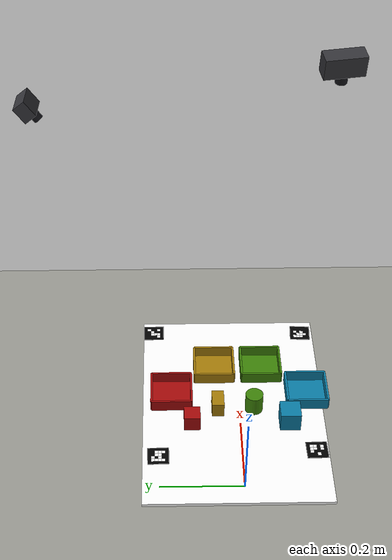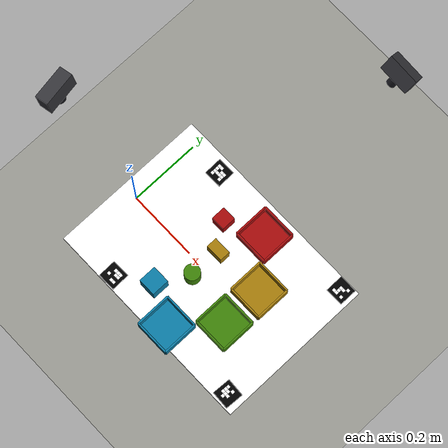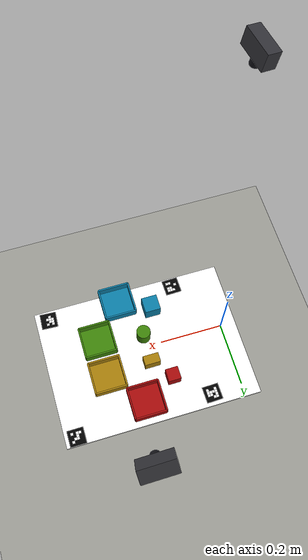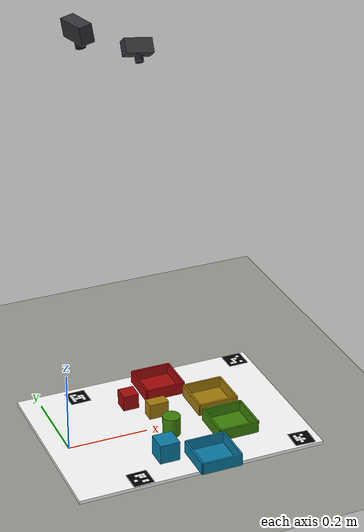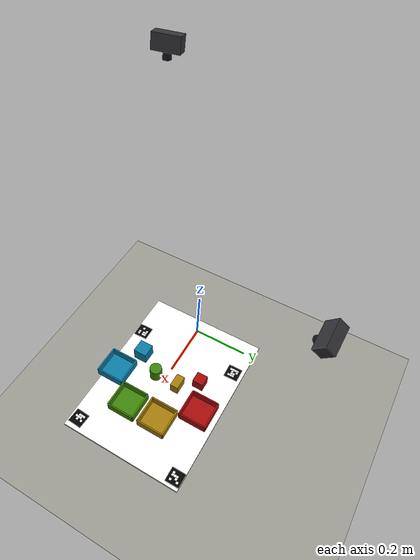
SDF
<?xml version='1.0' encoding='utf-8'?>
<sdf version="1.9">
  <world name="banc_realiste_yolo26">
    <plugin filename="gz-sim-physics-system" name="gz::sim::systems::Physics" />
    <plugin filename="gz-sim-user-commands-system" name="gz::sim::systems::UserCommands" />
    <plugin filename="gz-sim-scene-broadcaster-system" name="gz::sim::systems::SceneBroadcaster" />
    <plugin filename="gz-sim-sensors-system" name="gz::sim::systems::Sensors">
      <render_engine>ogre</render_engine>
    </plugin>
    <physics name="default_physics" type="ode">
      <max_step_size>0.001</max_step_size>
      <real_time_factor>1.0</real_time_factor>
    </physics>
    <scene>
      <ambient>0.5000 0.5000 0.5000 1.0000</ambient>
      <background>0.8 0.82 0.85 1</background>
    </scene>
    <light type="directional" name="sun">
      <cast_shadows>true</cast_shadows>
      <pose>0 0 10 0 0 0</pose>
      <diffuse>0.9000 0.9000 0.8500 1.0000</diffuse>
      <specular>0.3000 0.3000 0.3000 1.0000</specular>
      <attenuation>
        <range>1000</range>
        <constant>0.9</constant>
        <linear>0.01</linear>
        <quadratic>0.001</quadratic>
      </attenuation>
      <direction>-0.5 0.3 -0.9</direction>
    </light>
    <light type="directional" name="fill_light">
      <cast_shadows>false</cast_shadows>
      <pose>0 0 8 0 0 0</pose>
      <diffuse>0.4000 0.4000 0.5000 1.0000</diffuse>
      <specular>0.1000 0.1000 0.1000 1.0000</specular>
      <direction>0.5 -0.3 -0.7</direction>
    </light>
    <model name="ground_plane">
      <static>true</static>
      <link name="link">
        <collision name="collision">
          <geometry>
            <plane>
              <normal>0 0 1</normal>
              <size>20 20</size>
            </plane>
          </geometry>
        </collision>
        <visual name="visual">
          <geometry>
            <plane>
              <normal>0 0 1</normal>
              <size>20 20</size>
            </plane>
          </geometry>
          <material>
            <ambient>0.55 0.55 0.52 1</ambient>
            <diffuse>0.6 0.6 0.57 1</diffuse>
          </material>
        </visual>
      </link>
      <pose>0 0 -0.0085 0 0 0</pose>
    </model>
    <model name="table">
      <static>true</static>
      <pose>0.261 0.017 -0.00425 0 0 0</pose>
      <link name="link">
        <visual name="visual">
          <geometry>
            <mesh>
              <uri>package://mycobot_description/models/wood_table/meshes/tabletop.dae</uri>
            </mesh>
          </geometry>
          <material>
            <ambient>1 1 1 1</ambient>
            <diffuse>1 1 1 1</diffuse>
            <specular>0.08 0.08 0.08 1</specular>
            <pbr>
              <metal>
                <albedo_map>package://mycobot_description/models/wood_table/materials/textures/wood_albedo.png</albedo_map>
                <metalness>0.0</metalness>
                <roughness>0.65</roughness>
              </metal>
            </pbr>
          </material>
        </visual>
        <collision name="collision">
          <geometry>
            <box>
              <size>0.622 0.449 0.0085</size>
            </box>
          </geometry>
          <surface>
            <friction>
              <ode>
                <mu>0.9</mu>
                <mu2>0.9</mu2>
              </ode>
            </friction>
          </surface>
        </collision>
      </link>
    </model>
    <include>
      <uri>package://mycobot_description/models/aruco_19</uri>
      <name>aruco_19</name>
      <pose>0.0968 0.2034 0 0 0 -1.549547177458</pose>
    </include>
    <include>
      <uri>package://mycobot_description/models/aruco_23</uri>
      <name>aruco_23</name>
      <pose>0.11 -0.179 0 0 0 -1.550472159638</pose>
    </include>
    <include>
      <uri>package://mycobot_description/models/aruco_25</uri>
      <name>aruco_25</name>
      <pose>0.535 0.215 0 0 0 -1.567821028086</pose>
    </include>
    <include>
      <uri>package://mycobot_description/models/aruco_26</uri>
      <name>aruco_26</name>
      <pose>0.53 -0.176 0 0 0 -0.053626108386</pose>
    </include>
    <include>
      <uri>package://mycobot_description/models/bac_rouge</uri>
      <name>bac_rouge</name>
      <pose>0.300000 0.170000 0 0 0 0</pose>
    </include>
    <include>
      <uri>package://mycobot_description/models/cube_rouge</uri>
      <name>cube_rouge</name>
      <pose>0.200000 0.120000 0 0 0 0</pose>
    </include>
    <include>
      <uri>package://mycobot_description/models/bac_jaune</uri>
      <name>bac_jaune</name>
      <pose>0.395000 0.060000 0 0 0 0</pose>
    </include>
    <include>
      <uri>package://mycobot_description/models/pave_jaune</uri>
      <name>pave_jaune</name>
      <pose>0.250000 0.055000 0 0 0 0</pose>
    </include>
    <include>
      <uri>package://mycobot_description/models/bac_vert</uri>
      <name>bac_vert</name>
      <pose>0.395000 -0.060000 0 0 0 0</pose>
    </include>
    <include>
      <uri>package://mycobot_description/models/cylindre_vert</uri>
      <name>cylindre_vert</name>
      <pose>0.250000 -0.035000 0 0 0 0</pose>
    </include>
    <include>
      <uri>package://mycobot_description/models/bac_bleu</uri>
      <name>bac_bleu</name>
      <pose>0.300000 -0.170000 0 0 0 0</pose>
    </include>
    <include>
      <uri>package://mycobot_description/models/cube_bleu</uri>
      <name>cube_bleu</name>
      <pose>0.200000 -0.120000 0 0 0 0</pose>
    </include>
    <model name="arducam">
      <static>true</static>
      <pose>0.007071 -0.128254 1.069888 -0.046957 1.405347 0.119569</pose>
      <link name="camera_link">
        <visual name="boitier">
          <pose>-0.02 0 0 0 0 0</pose>
          <geometry>
            <box>
              <size>0.04 0.075 0.03</size>
            </box>
          </geometry>
          <material>
            <ambient>0.15 0.15 0.17 1</ambient>
            <diffuse>0.2 0.2 0.22 1</diffuse>
          </material>
        </visual>
        <visual name="objectif">
          <pose>0.008 0 0 0 1.5707963 0</pose>
          <geometry>
            <cylinder>
              <radius>0.011</radius>
              <length>0.022</length>
            </cylinder>
          </geometry>
          <material>
            <ambient>0.05 0.05 0.06 1</ambient>
            <diffuse>0.08 0.08 0.1 1</diffuse>
            <specular>0.6 0.6 0.6 1</specular>
          </material>
        </visual>
        <sensor name="arducam" type="camera">
          <always_on>true</always_on>
          <update_rate>10</update_rate>
          <topic>/arducam/image_raw</topic>
          <camera>
            <camera_info_topic>/arducam/camera_info</camera_info_topic>
            <horizontal_fov>1.145367686</horizontal_fov>
            <image>
              <width>640</width>
              <height>480</height>
              <format>R8G8B8</format>
            </image>
            <lens>
              <intrinsics>
                <fx>496.307503</fx>
                <fy>494.142967</fy>
                <cx>313.373811</cx>
                <cy>248.005662</cy>
                <s>0</s>
              </intrinsics>
            </lens>
            <clip>
              <near>0.02</near>
              <far>4.0</far>
            </clip>
          </camera>
        </sensor>
      </link>
    </model>
    <model name="svpro">
      <static>true</static>
      <pose>0.370684 0.457849 0.781242 -0.181539 0.898533 -1.722805</pose>
      <link name="camera_link">
        <visual name="boitier">
          <pose>-0.02 0 0 0 0 0</pose>
          <geometry>
            <box>
              <size>0.04 0.075 0.03</size>
            </box>
          </geometry>
          <material>
            <ambient>0.15 0.15 0.17 1</ambient>
            <diffuse>0.2 0.2 0.22 1</diffuse>
          </material>
        </visual>
        <visual name="objectif">
          <pose>0.008 0 0 0 1.5707963 0</pose>
          <geometry>
            <cylinder>
              <radius>0.011</radius>
              <length>0.022</length>
            </cylinder>
          </geometry>
          <material>
            <ambient>0.05 0.05 0.06 1</ambient>
            <diffuse>0.08 0.08 0.1 1</diffuse>
            <specular>0.6 0.6 0.6 1</specular>
          </material>
        </visual>
        <sensor name="svpro" type="camera">
          <always_on>true</always_on>
          <update_rate>10</update_rate>
          <topic>/svpro/image_raw</topic>
          <camera>
            <camera_info_topic>/svpro/camera_info</camera_info_topic>
            <horizontal_fov>1.241009780</horizontal_fov>
            <image>
              <width>640</width>
              <height>480</height>
              <format>R8G8B8</format>
            </image>
            <lens>
              <intrinsics>
                <fx>447.758168</fx>
                <fy>446.544127</fy>
                <cx>333.179135</cx>
                <cy>267.295929</cy>
                <s>0</s>
              </intrinsics>
            </lens>
            <clip>
              <near>0.02</near>
              <far>4.0</far>
            </clip>
          </camera>
        </sensor>
      </link>
    </model>
  </world>
</sdf>

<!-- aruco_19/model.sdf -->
<sdf version="1.9">
  <model name="aruco_19">
    <static>true</static>
    <link name="marker">
      <visual name="white_backing">
        <pose>0.000000000000 0.000000000000 0.000050000000 0 0 0</pose>
        <cast_shadows>false</cast_shadows>
        <geometry>
          <box><size>0.052000000000 0.052000000000 0.000100000000</size></box>
        </geometry>
        <material>
          <ambient>1 1 1 1</ambient>
          <diffuse>1 1 1 1</diffuse>
          <specular>0 0 0 1</specular>
        </material>
      </visual>
      <visual name="black_square">
        <pose>0.000000000000 0.000000000000 0.000110000000 0 0 0</pose>
        <cast_shadows>false</cast_shadows>
        <geometry>
          <box><size>0.050000000000 0.050000000000 0.000020000000</size></box>
        </geometry>
        <material>
          <ambient>0 0 0 1</ambient>
          <diffuse>0 0 0 1</diffuse>
          <specular>0 0 0 1</specular>
        </material>
      </visual>
      <visual name="white_cell_1_2">
        <pose>-0.004166666667 0.012500000000 0.000125000000 0 0 0</pose>
        <cast_shadows>false</cast_shadows>
        <geometry>
          <box><size>0.008333333333 0.008333333333 0.000010000000</size></box>
        </geometry>
        <material>
          <ambient>1 1 1 1</ambient>
          <diffuse>1 1 1 1</diffuse>
          <specular>0 0 0 1</specular>
        </material>
      </visual>
      <visual name="white_cell_1_3">
        <pose>0.004166666667 0.012500000000 0.000125000000 0 0 0</pose>
        <cast_shadows>false</cast_shadows>
        <geometry>
          <box><size>0.008333333333 0.008333333333 0.000010000000</size></box>
        </geometry>
        <material>
          <ambient>1 1 1 1</ambient>
          <diffuse>1 1 1 1</diffuse>
          <specular>0 0 0 1</specular>
        </material>
      </visual>
      <visual name="white_cell_1_4">
        <pose>0.012500000000 0.012500000000 0.000125000000 0 0 0</pose>
        <cast_shadows>false</cast_shadows>
        <geometry>
          <box><size>0.008333333333 0.008333333333 0.000010000000</size></box>
        </geometry>
        <material>
          <ambient>1 1 1 1</ambient>
          <diffuse>1 1 1 1</diffuse>
          <specular>0 0 0 1</specular>
        </material>
      </visual>
      <visual name="white_cell_2_2">
        <pose>-0.004166666667 0.004166666667 0.000125000000 0 0 0</pose>
        <cast_shadows>false</cast_shadows>
        <geometry>
          <box><size>0.008333333333 0.008333333333 0.000010000000</size></box>
        </geometry>
        <material>
          <ambient>1 1 1 1</ambient>
          <diffuse>1 1 1 1</diffuse>
          <specular>0 0 0 1</specular>
        </material>
      </visual>
      <visual name="white_cell_2_3">
        <pose>0.004166666667 0.004166666667 0.000125000000 0 0 0</pose>
        <cast_shadows>false</cast_shadows>
        <geometry>
          <box><size>0.008333333333 0.008333333333 0.000010000000</size></box>
        </geometry>
        <material>
          <ambient>1 1 1 1</ambient>
          <diffuse>1 1 1 1</diffuse>
          <specular>0 0 0 1</specular>
        </material>
      </visual>
      <visual name="white_cell_3_1">
        <pose>-0.012500000000 -0.004166666667 0.000125000000 0 0 0</pose>
        <cast_shadows>false</cast_shadows>
        <geometry>
          <box><size>0.008333333333 0.008333333333 0.000010000000</size></box>
        </geometry>
        <material>
          <ambient>1 1 1 1</ambient>
          <diffuse>1 1 1 1</diffuse>
          <specular>0 0 0 1</specular>
        </material>
      </visual>
      <visual name="white_cell_3_3">
        <pose>0.004166666667 -0.004166666667 0.000125000000 0 0 0</pose>
        <cast_shadows>false</cast_shadows>
        <geometry>
          <box><size>0.008333333333 0.008333333333 0.000010000000</size></box>
        </geometry>
        <material>
          <ambient>1 1 1 1</ambient>
          <diffuse>1 1 1 1</diffuse>
          <specular>0 0 0 1</specular>
        </material>
      </visual>
      <visual name="white_cell_4_1">
        <pose>-0.012500000000 -0.012500000000 0.000125000000 0 0 0</pose>
        <cast_shadows>false</cast_shadows>
        <geometry>
          <box><size>0.008333333333 0.008333333333 0.000010000000</size></box>
        </geometry>
        <material>
          <ambient>1 1 1 1</ambient>
          <diffuse>1 1 1 1</diffuse>
          <specular>0 0 0 1</specular>
        </material>
      </visual>
      <visual name="white_cell_4_2">
        <pose>-0.004166666667 -0.012500000000 0.000125000000 0 0 0</pose>
        <cast_shadows>false</cast_shadows>
        <geometry>
          <box><size>0.008333333333 0.008333333333 0.000010000000</size></box>
        </geometry>
        <material>
          <ambient>1 1 1 1</ambient>
          <diffuse>1 1 1 1</diffuse>
          <specular>0 0 0 1</specular>
        </material>
      </visual>
      <visual name="white_cell_4_3">
        <pose>0.004166666667 -0.012500000000 0.000125000000 0 0 0</pose>
        <cast_shadows>false</cast_shadows>
        <geometry>
          <box><size>0.008333333333 0.008333333333 0.000010000000</size></box>
        </geometry>
        <material>
          <ambient>1 1 1 1</ambient>
          <diffuse>1 1 1 1</diffuse>
          <specular>0 0 0 1</specular>
        </material>
      </visual>
      <visual name="white_cell_4_4">
        <pose>0.012500000000 -0.012500000000 0.000125000000 0 0 0</pose>
        <cast_shadows>false</cast_shadows>
        <geometry>
          <box><size>0.008333333333 0.008333333333 0.000010000000</size></box>
        </geometry>
        <material>
          <ambient>1 1 1 1</ambient>
          <diffuse>1 1 1 1</diffuse>
          <specular>0 0 0 1</specular>
        </material>
      </visual>
    </link>
  </model>
</sdf>

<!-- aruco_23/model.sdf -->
<sdf version="1.9">
  <model name="aruco_23">
    <static>true</static>
    <link name="marker">
      <visual name="white_backing">
        <pose>0.000000000000 0.000000000000 0.000050000000 0 0 0</pose>
        <cast_shadows>false</cast_shadows>
        <geometry>
          <box><size>0.052000000000 0.052000000000 0.000100000000</size></box>
        </geometry>
        <material>
          <ambient>1 1 1 1</ambient>
          <diffuse>1 1 1 1</diffuse>
          <specular>0 0 0 1</specular>
        </material>
      </visual>
      <visual name="black_square">
        <pose>0.000000000000 0.000000000000 0.000110000000 0 0 0</pose>
        <cast_shadows>false</cast_shadows>
        <geometry>
          <box><size>0.050000000000 0.050000000000 0.000020000000</size></box>
        </geometry>
        <material>
          <ambient>0 0 0 1</ambient>
          <diffuse>0 0 0 1</diffuse>
          <specular>0 0 0 1</specular>
        </material>
      </visual>
      <visual name="white_cell_1_1">
        <pose>-0.012500000000 0.012500000000 0.000125000000 0 0 0</pose>
        <cast_shadows>false</cast_shadows>
        <geometry>
          <box><size>0.008333333333 0.008333333333 0.000010000000</size></box>
        </geometry>
        <material>
          <ambient>1 1 1 1</ambient>
          <diffuse>1 1 1 1</diffuse>
          <specular>0 0 0 1</specular>
        </material>
      </visual>
      <visual name="white_cell_1_2">
        <pose>-0.004166666667 0.012500000000 0.000125000000 0 0 0</pose>
        <cast_shadows>false</cast_shadows>
        <geometry>
          <box><size>0.008333333333 0.008333333333 0.000010000000</size></box>
        </geometry>
        <material>
          <ambient>1 1 1 1</ambient>
          <diffuse>1 1 1 1</diffuse>
          <specular>0 0 0 1</specular>
        </material>
      </visual>
      <visual name="white_cell_1_4">
        <pose>0.012500000000 0.012500000000 0.000125000000 0 0 0</pose>
        <cast_shadows>false</cast_shadows>
        <geometry>
          <box><size>0.008333333333 0.008333333333 0.000010000000</size></box>
        </geometry>
        <material>
          <ambient>1 1 1 1</ambient>
          <diffuse>1 1 1 1</diffuse>
          <specular>0 0 0 1</specular>
        </material>
      </visual>
      <visual name="white_cell_2_1">
        <pose>-0.012500000000 0.004166666667 0.000125000000 0 0 0</pose>
        <cast_shadows>false</cast_shadows>
        <geometry>
          <box><size>0.008333333333 0.008333333333 0.000010000000</size></box>
        </geometry>
        <material>
          <ambient>1 1 1 1</ambient>
          <diffuse>1 1 1 1</diffuse>
          <specular>0 0 0 1</specular>
        </material>
      </visual>
      <visual name="white_cell_2_2">
        <pose>-0.004166666667 0.004166666667 0.000125000000 0 0 0</pose>
        <cast_shadows>false</cast_shadows>
        <geometry>
          <box><size>0.008333333333 0.008333333333 0.000010000000</size></box>
        </geometry>
        <material>
          <ambient>1 1 1 1</ambient>
          <diffuse>1 1 1 1</diffuse>
          <specular>0 0 0 1</specular>
        </material>
      </visual>
      <visual name="white_cell_2_4">
        <pose>0.012500000000 0.004166666667 0.000125000000 0 0 0</pose>
        <cast_shadows>false</cast_shadows>
        <geometry>
          <box><size>0.008333333333 0.008333333333 0.000010000000</size></box>
        </geometry>
        <material>
          <ambient>1 1 1 1</ambient>
          <diffuse>1 1 1 1</diffuse>
          <specular>0 0 0 1</specular>
        </material>
      </visual>
      <visual name="white_cell_3_1">
        <pose>-0.012500000000 -0.004166666667 0.000125000000 0 0 0</pose>
        <cast_shadows>false</cast_shadows>
        <geometry>
          <box><size>0.008333333333 0.008333333333 0.000010000000</size></box>
        </geometry>
        <material>
          <ambient>1 1 1 1</ambient>
          <diffuse>1 1 1 1</diffuse>
          <specular>0 0 0 1</specular>
        </material>
      </visual>
      <visual name="white_cell_4_3">
        <pose>0.004166666667 -0.012500000000 0.000125000000 0 0 0</pose>
        <cast_shadows>false</cast_shadows>
        <geometry>
          <box><size>0.008333333333 0.008333333333 0.000010000000</size></box>
        </geometry>
        <material>
          <ambient>1 1 1 1</ambient>
          <diffuse>1 1 1 1</diffuse>
          <specular>0 0 0 1</specular>
        </material>
      </visual>
    </link>
  </model>
</sdf>

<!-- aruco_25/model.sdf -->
<sdf version="1.9">
  <model name="aruco_25">
    <static>true</static>
    <link name="marker">
      <visual name="white_backing">
        <pose>0.000000000000 0.000000000000 0.000050000000 0 0 0</pose>
        <cast_shadows>false</cast_shadows>
        <geometry>
          <box><size>0.052000000000 0.052000000000 0.000100000000</size></box>
        </geometry>
        <material>
          <ambient>1 1 1 1</ambient>
          <diffuse>1 1 1 1</diffuse>
          <specular>0 0 0 1</specular>
        </material>
      </visual>
      <visual name="black_square">
        <pose>0.000000000000 0.000000000000 0.000110000000 0 0 0</pose>
        <cast_shadows>false</cast_shadows>
        <geometry>
          <box><size>0.050000000000 0.050000000000 0.000020000000</size></box>
        </geometry>
        <material>
          <ambient>0 0 0 1</ambient>
          <diffuse>0 0 0 1</diffuse>
          <specular>0 0 0 1</specular>
        </material>
      </visual>
      <visual name="white_cell_1_1">
        <pose>-0.012500000000 0.012500000000 0.000125000000 0 0 0</pose>
        <cast_shadows>false</cast_shadows>
        <geometry>
          <box><size>0.008333333333 0.008333333333 0.000010000000</size></box>
        </geometry>
        <material>
          <ambient>1 1 1 1</ambient>
          <diffuse>1 1 1 1</diffuse>
          <specular>0 0 0 1</specular>
        </material>
      </visual>
      <visual name="white_cell_1_4">
        <pose>0.012500000000 0.012500000000 0.000125000000 0 0 0</pose>
        <cast_shadows>false</cast_shadows>
        <geometry>
          <box><size>0.008333333333 0.008333333333 0.000010000000</size></box>
        </geometry>
        <material>
          <ambient>1 1 1 1</ambient>
          <diffuse>1 1 1 1</diffuse>
          <specular>0 0 0 1</specular>
        </material>
      </visual>
      <visual name="white_cell_2_2">
        <pose>-0.004166666667 0.004166666667 0.000125000000 0 0 0</pose>
        <cast_shadows>false</cast_shadows>
        <geometry>
          <box><size>0.008333333333 0.008333333333 0.000010000000</size></box>
        </geometry>
        <material>
          <ambient>1 1 1 1</ambient>
          <diffuse>1 1 1 1</diffuse>
          <specular>0 0 0 1</specular>
        </material>
      </visual>
      <visual name="white_cell_3_2">
        <pose>-0.004166666667 -0.004166666667 0.000125000000 0 0 0</pose>
        <cast_shadows>false</cast_shadows>
        <geometry>
          <box><size>0.008333333333 0.008333333333 0.000010000000</size></box>
        </geometry>
        <material>
          <ambient>1 1 1 1</ambient>
          <diffuse>1 1 1 1</diffuse>
          <specular>0 0 0 1</specular>
        </material>
      </visual>
      <visual name="white_cell_3_3">
        <pose>0.004166666667 -0.004166666667 0.000125000000 0 0 0</pose>
        <cast_shadows>false</cast_shadows>
        <geometry>
          <box><size>0.008333333333 0.008333333333 0.000010000000</size></box>
        </geometry>
        <material>
          <ambient>1 1 1 1</ambient>
          <diffuse>1 1 1 1</diffuse>
          <specular>0 0 0 1</specular>
        </material>
      </visual>
      <visual name="white_cell_3_4">
        <pose>0.012500000000 -0.004166666667 0.000125000000 0 0 0</pose>
        <cast_shadows>false</cast_shadows>
        <geometry>
          <box><size>0.008333333333 0.008333333333 0.000010000000</size></box>
        </geometry>
        <material>
          <ambient>1 1 1 1</ambient>
          <diffuse>1 1 1 1</diffuse>
          <specular>0 0 0 1</specular>
        </material>
      </visual>
      <visual name="white_cell_4_4">
        <pose>0.012500000000 -0.012500000000 0.000125000000 0 0 0</pose>
        <cast_shadows>false</cast_shadows>
        <geometry>
          <box><size>0.008333333333 0.008333333333 0.000010000000</size></box>
        </geometry>
        <material>
          <ambient>1 1 1 1</ambient>
          <diffuse>1 1 1 1</diffuse>
          <specular>0 0 0 1</specular>
        </material>
      </visual>
    </link>
  </model>
</sdf>

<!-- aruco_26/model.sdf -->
<sdf version="1.9">
  <model name="aruco_26">
    <static>true</static>
    <link name="marker">
      <visual name="white_backing">
        <pose>0.000000000000 0.000000000000 0.000050000000 0 0 0</pose>
        <cast_shadows>false</cast_shadows>
        <geometry>
          <box><size>0.052000000000 0.052000000000 0.000100000000</size></box>
        </geometry>
        <material>
          <ambient>1 1 1 1</ambient>
          <diffuse>1 1 1 1</diffuse>
          <specular>0 0 0 1</specular>
        </material>
      </visual>
      <visual name="black_square">
        <pose>0.000000000000 0.000000000000 0.000110000000 0 0 0</pose>
        <cast_shadows>false</cast_shadows>
        <geometry>
          <box><size>0.050000000000 0.050000000000 0.000020000000</size></box>
        </geometry>
        <material>
          <ambient>0 0 0 1</ambient>
          <diffuse>0 0 0 1</diffuse>
          <specular>0 0 0 1</specular>
        </material>
      </visual>
      <visual name="white_cell_1_1">
        <pose>-0.012500000000 0.012500000000 0.000125000000 0 0 0</pose>
        <cast_shadows>false</cast_shadows>
        <geometry>
          <box><size>0.008333333333 0.008333333333 0.000010000000</size></box>
        </geometry>
        <material>
          <ambient>1 1 1 1</ambient>
          <diffuse>1 1 1 1</diffuse>
          <specular>0 0 0 1</specular>
        </material>
      </visual>
      <visual name="white_cell_1_3">
        <pose>0.004166666667 0.012500000000 0.000125000000 0 0 0</pose>
        <cast_shadows>false</cast_shadows>
        <geometry>
          <box><size>0.008333333333 0.008333333333 0.000010000000</size></box>
        </geometry>
        <material>
          <ambient>1 1 1 1</ambient>
          <diffuse>1 1 1 1</diffuse>
          <specular>0 0 0 1</specular>
        </material>
      </visual>
      <visual name="white_cell_2_1">
        <pose>-0.012500000000 0.004166666667 0.000125000000 0 0 0</pose>
        <cast_shadows>false</cast_shadows>
        <geometry>
          <box><size>0.008333333333 0.008333333333 0.000010000000</size></box>
        </geometry>
        <material>
          <ambient>1 1 1 1</ambient>
          <diffuse>1 1 1 1</diffuse>
          <specular>0 0 0 1</specular>
        </material>
      </visual>
      <visual name="white_cell_2_2">
        <pose>-0.004166666667 0.004166666667 0.000125000000 0 0 0</pose>
        <cast_shadows>false</cast_shadows>
        <geometry>
          <box><size>0.008333333333 0.008333333333 0.000010000000</size></box>
        </geometry>
        <material>
          <ambient>1 1 1 1</ambient>
          <diffuse>1 1 1 1</diffuse>
          <specular>0 0 0 1</specular>
        </material>
      </visual>
      <visual name="white_cell_3_1">
        <pose>-0.012500000000 -0.004166666667 0.000125000000 0 0 0</pose>
        <cast_shadows>false</cast_shadows>
        <geometry>
          <box><size>0.008333333333 0.008333333333 0.000010000000</size></box>
        </geometry>
        <material>
          <ambient>1 1 1 1</ambient>
          <diffuse>1 1 1 1</diffuse>
          <specular>0 0 0 1</specular>
        </material>
      </visual>
      <visual name="white_cell_3_2">
        <pose>-0.004166666667 -0.004166666667 0.000125000000 0 0 0</pose>
        <cast_shadows>false</cast_shadows>
        <geometry>
          <box><size>0.008333333333 0.008333333333 0.000010000000</size></box>
        </geometry>
        <material>
          <ambient>1 1 1 1</ambient>
          <diffuse>1 1 1 1</diffuse>
          <specular>0 0 0 1</specular>
        </material>
      </visual>
      <visual name="white_cell_3_3">
        <pose>0.004166666667 -0.004166666667 0.000125000000 0 0 0</pose>
        <cast_shadows>false</cast_shadows>
        <geometry>
          <box><size>0.008333333333 0.008333333333 0.000010000000</size></box>
        </geometry>
        <material>
          <ambient>1 1 1 1</ambient>
          <diffuse>1 1 1 1</diffuse>
          <specular>0 0 0 1</specular>
        </material>
      </visual>
      <visual name="white_cell_4_2">
        <pose>-0.004166666667 -0.012500000000 0.000125000000 0 0 0</pose>
        <cast_shadows>false</cast_shadows>
        <geometry>
          <box><size>0.008333333333 0.008333333333 0.000010000000</size></box>
        </geometry>
        <material>
          <ambient>1 1 1 1</ambient>
          <diffuse>1 1 1 1</diffuse>
          <specular>0 0 0 1</specular>
        </material>
      </visual>
    </link>
  </model>
</sdf>

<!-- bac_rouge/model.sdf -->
<sdf version="1.9">
  <model name="bac_rouge">
    <static>true</static>
    <link name="corps">
      <collision name="fond_collision">
        <pose>0.000000 0.000000 0.001000 0 0 0</pose>
        <geometry><box><size>0.095000 0.095000 0.002000</size></box></geometry>
      </collision>
      <visual name="fond">
        <pose>0.000000 0.000000 0.001000 0 0 0</pose>
        <geometry><box><size>0.095000 0.095000 0.002000</size></box></geometry>
        <material>
          <ambient>0.647 0.039 0.039 1</ambient>
          <diffuse>0.647 0.039 0.039 1</diffuse>
          <specular>0.1 0.1 0.1 1</specular>
        </material>
      </visual>
      <collision name="paroi_x_plus_collision">
        <pose>0.050000 0.000000 0.015000 0 0 0</pose>
        <geometry><box><size>0.005000 0.100000 0.030000</size></box></geometry>
      </collision>
      <visual name="paroi_x_plus">
        <pose>0.050000 0.000000 0.015000 0 0 0</pose>
        <geometry><box><size>0.005000 0.100000 0.030000</size></box></geometry>
        <material>
          <ambient>0.647 0.039 0.039 1</ambient>
          <diffuse>0.647 0.039 0.039 1</diffuse>
          <specular>0.1 0.1 0.1 1</specular>
        </material>
      </visual>
      <collision name="paroi_x_moins_collision">
        <pose>-0.050000 0.000000 0.015000 0 0 0</pose>
        <geometry><box><size>0.005000 0.100000 0.030000</size></box></geometry>
      </collision>
      <visual name="paroi_x_moins">
        <pose>-0.050000 0.000000 0.015000 0 0 0</pose>
        <geometry><box><size>0.005000 0.100000 0.030000</size></box></geometry>
        <material>
          <ambient>0.647 0.039 0.039 1</ambient>
          <diffuse>0.647 0.039 0.039 1</diffuse>
          <specular>0.1 0.1 0.1 1</specular>
        </material>
      </visual>
      <collision name="paroi_y_plus_collision">
        <pose>0.000000 0.050000 0.015000 0 0 0</pose>
        <geometry><box><size>0.100000 0.005000 0.030000</size></box></geometry>
      </collision>
      <visual name="paroi_y_plus">
        <pose>0.000000 0.050000 0.015000 0 0 0</pose>
        <geometry><box><size>0.100000 0.005000 0.030000</size></box></geometry>
        <material>
          <ambient>0.647 0.039 0.039 1</ambient>
          <diffuse>0.647 0.039 0.039 1</diffuse>
          <specular>0.1 0.1 0.1 1</specular>
        </material>
      </visual>
      <collision name="paroi_y_moins_collision">
        <pose>0.000000 -0.050000 0.015000 0 0 0</pose>
        <geometry><box><size>0.100000 0.005000 0.030000</size></box></geometry>
      </collision>
      <visual name="paroi_y_moins">
        <pose>0.000000 -0.050000 0.015000 0 0 0</pose>
        <geometry><box><size>0.100000 0.005000 0.030000</size></box></geometry>
        <material>
          <ambient>0.647 0.039 0.039 1</ambient>
          <diffuse>0.647 0.039 0.039 1</diffuse>
          <specular>0.1 0.1 0.1 1</specular>
        </material>
      </visual>
    </link>
  </model>
</sdf>

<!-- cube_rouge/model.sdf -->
<sdf version="1.9">
  <model name="cube_rouge">
    <link name="corps">
      <pose>0 0 0.020000 0 0 0</pose>
      <inertial>
        <mass>0.032000</mass>
        <inertia>
          <ixx>0.000008533</ixx><iyy>0.000008533</iyy><izz>0.000008533</izz>
          <ixy>0</ixy><ixz>0</ixz><iyz>0</iyz>
        </inertia>
      </inertial>
      <collision name="collision">
        <geometry><box><size>0.040000 0.040000 0.040000</size></box></geometry>
        <surface>
          <friction><ode><mu>1.0</mu><mu2>1.0</mu2></ode></friction>
        </surface>
      </collision>
      <visual name="visual">
        <geometry><box><size>0.040000 0.040000 0.040000</size></box></geometry>
        <material>
          <ambient>0.647 0.039 0.039 1</ambient>
          <diffuse>0.647 0.039 0.039 1</diffuse>
          <specular>0.1 0.1 0.1 1</specular>
        </material>
      </visual>
    </link>
  </model>
</sdf>

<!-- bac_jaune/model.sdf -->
<sdf version="1.9">
  <model name="bac_jaune">
    <static>true</static>
    <link name="corps">
      <collision name="fond_collision">
        <pose>0.000000 0.000000 0.001000 0 0 0</pose>
        <geometry><box><size>0.095000 0.095000 0.002000</size></box></geometry>
      </collision>
      <visual name="fond">
        <pose>0.000000 0.000000 0.001000 0 0 0</pose>
        <geometry><box><size>0.095000 0.095000 0.002000</size></box></geometry>
        <material>
          <ambient>0.647 0.486 0.039 1</ambient>
          <diffuse>0.647 0.486 0.039 1</diffuse>
          <specular>0.1 0.1 0.1 1</specular>
        </material>
      </visual>
      <collision name="paroi_x_plus_collision">
        <pose>0.050000 0.000000 0.015000 0 0 0</pose>
        <geometry><box><size>0.005000 0.100000 0.030000</size></box></geometry>
      </collision>
      <visual name="paroi_x_plus">
        <pose>0.050000 0.000000 0.015000 0 0 0</pose>
        <geometry><box><size>0.005000 0.100000 0.030000</size></box></geometry>
        <material>
          <ambient>0.647 0.486 0.039 1</ambient>
          <diffuse>0.647 0.486 0.039 1</diffuse>
          <specular>0.1 0.1 0.1 1</specular>
        </material>
      </visual>
      <collision name="paroi_x_moins_collision">
        <pose>-0.050000 0.000000 0.015000 0 0 0</pose>
        <geometry><box><size>0.005000 0.100000 0.030000</size></box></geometry>
      </collision>
      <visual name="paroi_x_moins">
        <pose>-0.050000 0.000000 0.015000 0 0 0</pose>
        <geometry><box><size>0.005000 0.100000 0.030000</size></box></geometry>
        <material>
          <ambient>0.647 0.486 0.039 1</ambient>
          <diffuse>0.647 0.486 0.039 1</diffuse>
          <specular>0.1 0.1 0.1 1</specular>
        </material>
      </visual>
      <collision name="paroi_y_plus_collision">
        <pose>0.000000 0.050000 0.015000 0 0 0</pose>
        <geometry><box><size>0.100000 0.005000 0.030000</size></box></geometry>
      </collision>
      <visual name="paroi_y_plus">
        <pose>0.000000 0.050000 0.015000 0 0 0</pose>
        <geometry><box><size>0.100000 0.005000 0.030000</size></box></geometry>
        <material>
          <ambient>0.647 0.486 0.039 1</ambient>
          <diffuse>0.647 0.486 0.039 1</diffuse>
          <specular>0.1 0.1 0.1 1</specular>
        </material>
      </visual>
      <collision name="paroi_y_moins_collision">
        <pose>0.000000 -0.050000 0.015000 0 0 0</pose>
        <geometry><box><size>0.100000 0.005000 0.030000</size></box></geometry>
      </collision>
      <visual name="paroi_y_moins">
        <pose>0.000000 -0.050000 0.015000 0 0 0</pose>
        <geometry><box><size>0.100000 0.005000 0.030000</size></box></geometry>
        <material>
          <ambient>0.647 0.486 0.039 1</ambient>
          <diffuse>0.647 0.486 0.039 1</diffuse>
          <specular>0.1 0.1 0.1 1</specular>
        </material>
      </visual>
    </link>
  </model>
</sdf>

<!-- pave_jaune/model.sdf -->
<sdf version="1.9">
  <model name="pave_jaune">
    <link name="corps">
      <pose>0 0 0.020000 0 0 0</pose>
      <inertial>
        <mass>0.030000</mass>
        <inertia>
          <ixx>0.000006250</ixx><iyy>0.000010250</iyy><izz>0.000008500</izz>
          <ixy>0</ixy><ixz>0</ixz><iyz>0</iyz>
        </inertia>
      </inertial>
      <collision name="collision">
        <geometry><box><size>0.050000 0.030000 0.040000</size></box></geometry>
        <surface>
          <friction><ode><mu>1.0</mu><mu2>1.0</mu2></ode></friction>
        </surface>
      </collision>
      <visual name="visual">
        <geometry><box><size>0.050000 0.030000 0.040000</size></box></geometry>
        <material>
          <ambient>0.647 0.486 0.039 1</ambient>
          <diffuse>0.647 0.486 0.039 1</diffuse>
          <specular>0.1 0.1 0.1 1</specular>
        </material>
      </visual>
    </link>
  </model>
</sdf>

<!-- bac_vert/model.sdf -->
<sdf version="1.9">
  <model name="bac_vert">
    <static>true</static>
    <link name="corps">
      <collision name="fond_collision">
        <pose>0.000000 0.000000 0.001000 0 0 0</pose>
        <geometry><box><size>0.095000 0.095000 0.002000</size></box></geometry>
      </collision>
      <visual name="fond">
        <pose>0.000000 0.000000 0.001000 0 0 0</pose>
        <geometry><box><size>0.095000 0.095000 0.002000</size></box></geometry>
        <material>
          <ambient>0.239 0.510 0.031 1</ambient>
          <diffuse>0.239 0.510 0.031 1</diffuse>
          <specular>0.1 0.1 0.1 1</specular>
        </material>
      </visual>
      <collision name="paroi_x_plus_collision">
        <pose>0.050000 0.000000 0.015000 0 0 0</pose>
        <geometry><box><size>0.005000 0.100000 0.030000</size></box></geometry>
      </collision>
      <visual name="paroi_x_plus">
        <pose>0.050000 0.000000 0.015000 0 0 0</pose>
        <geometry><box><size>0.005000 0.100000 0.030000</size></box></geometry>
        <material>
          <ambient>0.239 0.510 0.031 1</ambient>
          <diffuse>0.239 0.510 0.031 1</diffuse>
          <specular>0.1 0.1 0.1 1</specular>
        </material>
      </visual>
      <collision name="paroi_x_moins_collision">
        <pose>-0.050000 0.000000 0.015000 0 0 0</pose>
        <geometry><box><size>0.005000 0.100000 0.030000</size></box></geometry>
      </collision>
      <visual name="paroi_x_moins">
        <pose>-0.050000 0.000000 0.015000 0 0 0</pose>
        <geometry><box><size>0.005000 0.100000 0.030000</size></box></geometry>
        <material>
          <ambient>0.239 0.510 0.031 1</ambient>
          <diffuse>0.239 0.510 0.031 1</diffuse>
          <specular>0.1 0.1 0.1 1</specular>
        </material>
      </visual>
      <collision name="paroi_y_plus_collision">
        <pose>0.000000 0.050000 0.015000 0 0 0</pose>
        <geometry><box><size>0.100000 0.005000 0.030000</size></box></geometry>
      </collision>
      <visual name="paroi_y_plus">
        <pose>0.000000 0.050000 0.015000 0 0 0</pose>
        <geometry><box><size>0.100000 0.005000 0.030000</size></box></geometry>
        <material>
          <ambient>0.239 0.510 0.031 1</ambient>
          <diffuse>0.239 0.510 0.031 1</diffuse>
          <specular>0.1 0.1 0.1 1</specular>
        </material>
      </visual>
      <collision name="paroi_y_moins_collision">
        <pose>0.000000 -0.050000 0.015000 0 0 0</pose>
        <geometry><box><size>0.100000 0.005000 0.030000</size></box></geometry>
      </collision>
      <visual name="paroi_y_moins">
        <pose>0.000000 -0.050000 0.015000 0 0 0</pose>
        <geometry><box><size>0.100000 0.005000 0.030000</size></box></geometry>
        <material>
          <ambient>0.239 0.510 0.031 1</ambient>
          <diffuse>0.239 0.510 0.031 1</diffuse>
          <specular>0.1 0.1 0.1 1</specular>
        </material>
      </visual>
    </link>
  </model>
</sdf>

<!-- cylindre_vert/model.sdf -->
<sdf version="1.9">
  <model name="cylindre_vert">
    <link name="corps">
      <pose>0 0 0.025000 0 0 0</pose>
      <inertial>
        <mass>0.038013</mass>
        <inertia>
          <ixx>0.000012519</ixx><iyy>0.000012519</iyy><izz>0.000009199</izz>
          <ixy>0</ixy><ixz>0</ixz><iyz>0</iyz>
        </inertia>
      </inertial>
      <collision name="collision">
        <geometry><cylinder><radius>0.022000</radius><length>0.050000</length></cylinder></geometry>
        <surface>
          <friction><ode><mu>1.0</mu><mu2>1.0</mu2></ode></friction>
        </surface>
      </collision>
      <visual name="visual">
        <geometry><cylinder><radius>0.022000</radius><length>0.050000</length></cylinder></geometry>
        <material>
          <ambient>0.239 0.510 0.031 1</ambient>
          <diffuse>0.239 0.510 0.031 1</diffuse>
          <specular>0.1 0.1 0.1 1</specular>
        </material>
      </visual>
    </link>
  </model>
</sdf>

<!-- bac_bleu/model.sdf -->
<sdf version="1.9">
  <model name="bac_bleu">
    <static>true</static>
    <link name="corps">
      <collision name="fond_collision">
        <pose>0.000000 0.000000 0.001000 0 0 0</pose>
        <geometry><box><size>0.095000 0.095000 0.002000</size></box></geometry>
      </collision>
      <visual name="fond">
        <pose>0.000000 0.000000 0.001000 0 0 0</pose>
        <geometry><box><size>0.095000 0.095000 0.002000</size></box></geometry>
        <material>
          <ambient>0.039 0.486 0.647 1</ambient>
          <diffuse>0.039 0.486 0.647 1</diffuse>
          <specular>0.1 0.1 0.1 1</specular>
        </material>
      </visual>
      <collision name="paroi_x_plus_collision">
        <pose>0.050000 0.000000 0.015000 0 0 0</pose>
        <geometry><box><size>0.005000 0.100000 0.030000</size></box></geometry>
      </collision>
      <visual name="paroi_x_plus">
        <pose>0.050000 0.000000 0.015000 0 0 0</pose>
        <geometry><box><size>0.005000 0.100000 0.030000</size></box></geometry>
        <material>
          <ambient>0.039 0.486 0.647 1</ambient>
          <diffuse>0.039 0.486 0.647 1</diffuse>
          <specular>0.1 0.1 0.1 1</specular>
        </material>
      </visual>
      <collision name="paroi_x_moins_collision">
        <pose>-0.050000 0.000000 0.015000 0 0 0</pose>
        <geometry><box><size>0.005000 0.100000 0.030000</size></box></geometry>
      </collision>
      <visual name="paroi_x_moins">
        <pose>-0.050000 0.000000 0.015000 0 0 0</pose>
        <geometry><box><size>0.005000 0.100000 0.030000</size></box></geometry>
        <material>
          <ambient>0.039 0.486 0.647 1</ambient>
          <diffuse>0.039 0.486 0.647 1</diffuse>
          <specular>0.1 0.1 0.1 1</specular>
        </material>
      </visual>
      <collision name="paroi_y_plus_collision">
        <pose>0.000000 0.050000 0.015000 0 0 0</pose>
        <geometry><box><size>0.100000 0.005000 0.030000</size></box></geometry>
      </collision>
      <visual name="paroi_y_plus">
        <pose>0.000000 0.050000 0.015000 0 0 0</pose>
        <geometry><box><size>0.100000 0.005000 0.030000</size></box></geometry>
        <material>
          <ambient>0.039 0.486 0.647 1</ambient>
          <diffuse>0.039 0.486 0.647 1</diffuse>
          <specular>0.1 0.1 0.1 1</specular>
        </material>
      </visual>
      <collision name="paroi_y_moins_collision">
        <pose>0.000000 -0.050000 0.015000 0 0 0</pose>
        <geometry><box><size>0.100000 0.005000 0.030000</size></box></geometry>
      </collision>
      <visual name="paroi_y_moins">
        <pose>0.000000 -0.050000 0.015000 0 0 0</pose>
        <geometry><box><size>0.100000 0.005000 0.030000</size></box></geometry>
        <material>
          <ambient>0.039 0.486 0.647 1</ambient>
          <diffuse>0.039 0.486 0.647 1</diffuse>
          <specular>0.1 0.1 0.1 1</specular>
        </material>
      </visual>
    </link>
  </model>
</sdf>

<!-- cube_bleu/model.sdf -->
<sdf version="1.9">
  <model name="cube_bleu">
    <link name="corps">
      <pose>0 0 0.025000 0 0 0</pose>
      <inertial>
        <mass>0.062500</mass>
        <inertia>
          <ixx>0.000026042</ixx><iyy>0.000026042</iyy><izz>0.000026042</izz>
          <ixy>0</ixy><ixz>0</ixz><iyz>0</iyz>
        </inertia>
      </inertial>
      <collision name="collision">
        <geometry><box><size>0.050000 0.050000 0.050000</size></box></geometry>
        <surface>
          <friction><ode><mu>1.0</mu><mu2>1.0</mu2></ode></friction>
        </surface>
      </collision>
      <visual name="visual">
        <geometry><box><size>0.050000 0.050000 0.050000</size></box></geometry>
        <material>
          <ambient>0.039 0.486 0.647 1</ambient>
          <diffuse>0.039 0.486 0.647 1</diffuse>
          <specular>0.1 0.1 0.1 1</specular>
        </material>
      </visual>
    </link>
  </model>
</sdf>
